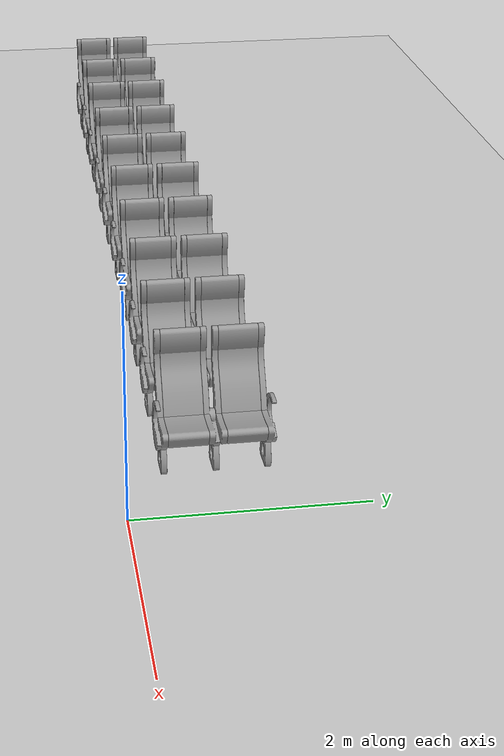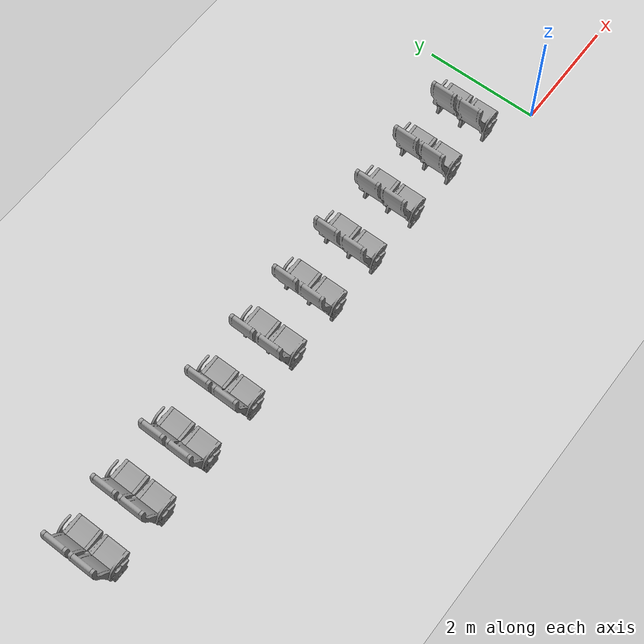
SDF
<sdf version="1.7">
 <world name="default">
  <model name="ground_plane">
   <static>1</static>
   <link name="link">
    <collision name="collision">
     <geometry><plane><normal>0 0 1</normal><size>100 100</size></plane></geometry>
     <surface><friction><ode><mu>100</mu><mu2>50</mu2></ode></friction></surface>
    </collision>
    <visual name="visual">
     <cast_shadows>0</cast_shadows>
     <geometry><plane><normal>0 0 1</normal><size>100 100</size></plane></geometry>
     <material>
      <script><uri>file://media/materials/scripts/gazebo.material</uri><name>Gazebo/Grey</name></script>
     </material>
    </visual>
   </link>
  </model>
  <model name="seat_10">
   <model name="seat">
    <link name="link_0">
     <inertial>
      <mass>1</mass>
      <inertia>
       <ixx>0.166667</ixx>
       <ixy>0</ixy>
       <ixz>0</ixz>
       <iyy>0.166667</iyy>
       <iyz>0</iyz>
       <izz>0.166667</izz>
      </inertia>
     </inertial>
     <visual name="visual">
      <pose>-0.3 -0.5 0 0 -0 0</pose>
      <geometry><mesh><uri>model://seat1/meshes/seat1.stl</uri><scale>0.001 0.001 0.001</scale></mesh></geometry>
      <material>
       <lighting>1</lighting>
       <script><uri>file://media/materials/scripts/gazebo.material</uri><name>Gazebo/Grey</name></script>
       <shader type="pixel"><normal_map>__default__</normal_map></shader>
       <ambient>0.3 0.3 0.3 1</ambient>
       <diffuse>0.7 0.7 0.7 1</diffuse>
       <specular>0.01 0.01 0.01 1</specular>
       <emissive>0 0 0 1</emissive>
      </material>
     </visual>
     <collision name="collision">
      <pose>-0.3 -0.5 0 0 -0 0</pose>
      <geometry><mesh><uri>model://seat1/meshes/seat1.stl</uri><scale>0.001 0.001 0.001</scale></mesh></geometry>
      <surface>
       <friction>
        <ode><mu>10000</mu><mu2>10000</mu2><fdir1>0 0 0</fdir1><slip1>0</slip1><slip2>0</slip2></ode>
        <torsional>
         <coefficient>1</coefficient>
         <patch_radius>0</patch_radius>
         <surface_radius>0</surface_radius>
         <use_patch_radius>1</use_patch_radius>
         <ode><slip>0</slip></ode>
        </torsional>
       </friction>
       <bounce><restitution_coefficient>0</restitution_coefficient><threshold>1e+06</threshold></bounce>
       <contact>
        <collide_without_contact>0</collide_without_contact>
        <collide_without_contact_bitmask>1</collide_without_contact_bitmask>
        <collide_bitmask>1</collide_bitmask>
        <ode>
         <soft_cfm>0</soft_cfm>
         <soft_erp>0.2</soft_erp>
         <kp>1e+13</kp>
         <kd>1</kd>
         <max_vel>0.01</max_vel>
         <min_depth>0</min_depth>
        </ode>
        <bullet>
         <split_impulse>1</split_impulse>
         <split_impulse_penetration_threshold>-0.01</split_impulse_penetration_threshold>
         <soft_cfm>0</soft_cfm>
         <soft_erp>0.2</soft_erp>
         <kp>1e+13</kp>
         <kd>1</kd>
        </bullet>
       </contact>
      </surface>
     </collision>
    </link>
    <static>0</static>
    <pose>-4.49906 0.001451 0 0 -0 0</pose>
   </model>
   <model name="seat_0">
    <link name="link_0">
     <inertial>
      <mass>1</mass>
      <inertia>
       <ixx>0.166667</ixx>
       <ixy>0</ixy>
       <ixz>0</ixz>
       <iyy>0.166667</iyy>
       <iyz>0</iyz>
       <izz>0.166667</izz>
      </inertia>
     </inertial>
     <visual name="visual">
      <pose>-0.3 -0.5 0 0 -0 0</pose>
      <geometry><mesh><uri>model://seat1/meshes/seat1.stl</uri><scale>0.001 0.001 0.001</scale></mesh></geometry>
      <material>
       <lighting>1</lighting>
       <script><uri>file://media/materials/scripts/gazebo.material</uri><name>Gazebo/Grey</name></script>
       <shader type="pixel"><normal_map>__default__</normal_map></shader>
       <ambient>0.3 0.3 0.3 1</ambient>
       <diffuse>0.7 0.7 0.7 1</diffuse>
       <specular>0.01 0.01 0.01 1</specular>
       <emissive>0 0 0 1</emissive>
      </material>
     </visual>
     <collision name="collision">
      <pose>-0.3 -0.5 0 0 -0 0</pose>
      <geometry><mesh><uri>model://seat1/meshes/seat1.stl</uri><scale>0.001 0.001 0.001</scale></mesh></geometry>
      <surface>
       <friction>
        <ode><mu>10000</mu><mu2>10000</mu2><fdir1>0 0 0</fdir1><slip1>0</slip1><slip2>0</slip2></ode>
        <torsional>
         <coefficient>1</coefficient>
         <patch_radius>0</patch_radius>
         <surface_radius>0</surface_radius>
         <use_patch_radius>1</use_patch_radius>
         <ode><slip>0</slip></ode>
        </torsional>
       </friction>
       <bounce><restitution_coefficient>0</restitution_coefficient><threshold>1e+06</threshold></bounce>
       <contact>
        <collide_without_contact>0</collide_without_contact>
        <collide_without_contact_bitmask>1</collide_without_contact_bitmask>
        <collide_bitmask>1</collide_bitmask>
        <ode>
         <soft_cfm>0</soft_cfm>
         <soft_erp>0.2</soft_erp>
         <kp>1e+13</kp>
         <kd>1</kd>
         <max_vel>0.01</max_vel>
         <min_depth>0</min_depth>
        </ode>
        <bullet>
         <split_impulse>1</split_impulse>
         <split_impulse_penetration_threshold>-0.01</split_impulse_penetration_threshold>
         <soft_cfm>0</soft_cfm>
         <soft_erp>0.2</soft_erp>
         <kp>1e+13</kp>
         <kd>1</kd>
        </bullet>
       </contact>
      </surface>
     </collision>
    </link>
    <static>0</static>
    <pose>-3.50213 0.000104 0 0 -0 0</pose>
   </model>
   <model name="seat_1">
    <link name="link_0">
     <inertial>
      <mass>1</mass>
      <inertia>
       <ixx>0.166667</ixx>
       <ixy>0</ixy>
       <ixz>0</ixz>
       <iyy>0.166667</iyy>
       <iyz>0</iyz>
       <izz>0.166667</izz>
      </inertia>
     </inertial>
     <visual name="visual">
      <pose>-0.3 -0.5 0 0 -0 0</pose>
      <geometry><mesh><uri>model://seat1/meshes/seat1.stl</uri><scale>0.001 0.001 0.001</scale></mesh></geometry>
      <material>
       <lighting>1</lighting>
       <script><uri>file://media/materials/scripts/gazebo.material</uri><name>Gazebo/Grey</name></script>
       <shader type="pixel"><normal_map>__default__</normal_map></shader>
       <ambient>0.3 0.3 0.3 1</ambient>
       <diffuse>0.7 0.7 0.7 1</diffuse>
       <specular>0.01 0.01 0.01 1</specular>
       <emissive>0 0 0 1</emissive>
      </material>
     </visual>
     <collision name="collision">
      <pose>-0.3 -0.5 0 0 -0 0</pose>
      <geometry><mesh><uri>model://seat1/meshes/seat1.stl</uri><scale>0.001 0.001 0.001</scale></mesh></geometry>
      <surface>
       <friction>
        <ode><mu>10000</mu><mu2>10000</mu2><fdir1>0 0 0</fdir1><slip1>0</slip1><slip2>0</slip2></ode>
        <torsional>
         <coefficient>1</coefficient>
         <patch_radius>0</patch_radius>
         <surface_radius>0</surface_radius>
         <use_patch_radius>1</use_patch_radius>
         <ode><slip>0</slip></ode>
        </torsional>
       </friction>
       <bounce><restitution_coefficient>0</restitution_coefficient><threshold>1e+06</threshold></bounce>
       <contact>
        <collide_without_contact>0</collide_without_contact>
        <collide_without_contact_bitmask>1</collide_without_contact_bitmask>
        <collide_bitmask>1</collide_bitmask>
        <ode>
         <soft_cfm>0</soft_cfm>
         <soft_erp>0.2</soft_erp>
         <kp>1e+13</kp>
         <kd>1</kd>
         <max_vel>0.01</max_vel>
         <min_depth>0</min_depth>
        </ode>
        <bullet>
         <split_impulse>1</split_impulse>
         <split_impulse_penetration_threshold>-0.01</split_impulse_penetration_threshold>
         <soft_cfm>0</soft_cfm>
         <soft_erp>0.2</soft_erp>
         <kp>1e+13</kp>
         <kd>1</kd>
        </bullet>
       </contact>
      </surface>
     </collision>
    </link>
    <static>0</static>
    <pose>-2.50166 -0.002281 0 0 -0 0</pose>
   </model>
   <model name="seat_2">
    <link name="link_0">
     <inertial>
      <mass>1</mass>
      <inertia>
       <ixx>0.166667</ixx>
       <ixy>0</ixy>
       <ixz>0</ixz>
       <iyy>0.166667</iyy>
       <iyz>0</iyz>
       <izz>0.166667</izz>
      </inertia>
     </inertial>
     <visual name="visual">
      <pose>-0.3 -0.5 0 0 -0 0</pose>
      <geometry><mesh><uri>model://seat1/meshes/seat1.stl</uri><scale>0.001 0.001 0.001</scale></mesh></geometry>
      <material>
       <lighting>1</lighting>
       <script><uri>file://media/materials/scripts/gazebo.material</uri><name>Gazebo/Grey</name></script>
       <shader type="pixel"><normal_map>__default__</normal_map></shader>
       <ambient>0.3 0.3 0.3 1</ambient>
       <diffuse>0.7 0.7 0.7 1</diffuse>
       <specular>0.01 0.01 0.01 1</specular>
       <emissive>0 0 0 1</emissive>
      </material>
     </visual>
     <collision name="collision">
      <pose>-0.3 -0.5 0 0 -0 0</pose>
      <geometry><mesh><uri>model://seat1/meshes/seat1.stl</uri><scale>0.001 0.001 0.001</scale></mesh></geometry>
      <surface>
       <friction>
        <ode><mu>10000</mu><mu2>10000</mu2><fdir1>0 0 0</fdir1><slip1>0</slip1><slip2>0</slip2></ode>
        <torsional>
         <coefficient>1</coefficient>
         <patch_radius>0</patch_radius>
         <surface_radius>0</surface_radius>
         <use_patch_radius>1</use_patch_radius>
         <ode><slip>0</slip></ode>
        </torsional>
       </friction>
       <bounce><restitution_coefficient>0</restitution_coefficient><threshold>1e+06</threshold></bounce>
       <contact>
        <collide_without_contact>0</collide_without_contact>
        <collide_without_contact_bitmask>1</collide_without_contact_bitmask>
        <collide_bitmask>1</collide_bitmask>
        <ode>
         <soft_cfm>0</soft_cfm>
         <soft_erp>0.2</soft_erp>
         <kp>1e+13</kp>
         <kd>1</kd>
         <max_vel>0.01</max_vel>
         <min_depth>0</min_depth>
        </ode>
        <bullet>
         <split_impulse>1</split_impulse>
         <split_impulse_penetration_threshold>-0.01</split_impulse_penetration_threshold>
         <soft_cfm>0</soft_cfm>
         <soft_erp>0.2</soft_erp>
         <kp>1e+13</kp>
         <kd>1</kd>
        </bullet>
       </contact>
      </surface>
     </collision>
    </link>
    <static>0</static>
    <pose>-1.49886 -0.001439 0 0 -0 0</pose>
   </model>
   <model name="seat_3">
    <link name="link_0">
     <inertial>
      <mass>1</mass>
      <inertia>
       <ixx>0.166667</ixx>
       <ixy>0</ixy>
       <ixz>0</ixz>
       <iyy>0.166667</iyy>
       <iyz>0</iyz>
       <izz>0.166667</izz>
      </inertia>
     </inertial>
     <visual name="visual">
      <pose>-0.3 -0.5 0 0 -0 0</pose>
      <geometry><mesh><uri>model://seat1/meshes/seat1.stl</uri><scale>0.001 0.001 0.001</scale></mesh></geometry>
      <material>
       <lighting>1</lighting>
       <script><uri>file://media/materials/scripts/gazebo.material</uri><name>Gazebo/Grey</name></script>
       <shader type="pixel"><normal_map>__default__</normal_map></shader>
       <ambient>0.3 0.3 0.3 1</ambient>
       <diffuse>0.7 0.7 0.7 1</diffuse>
       <specular>0.01 0.01 0.01 1</specular>
       <emissive>0 0 0 1</emissive>
      </material>
     </visual>
     <collision name="collision">
      <pose>-0.3 -0.5 0 0 -0 0</pose>
      <geometry><mesh><uri>model://seat1/meshes/seat1.stl</uri><scale>0.001 0.001 0.001</scale></mesh></geometry>
      <surface>
       <friction>
        <ode><mu>10000</mu><mu2>10000</mu2><fdir1>0 0 0</fdir1><slip1>0</slip1><slip2>0</slip2></ode>
        <torsional>
         <coefficient>1</coefficient>
         <patch_radius>0</patch_radius>
         <surface_radius>0</surface_radius>
         <use_patch_radius>1</use_patch_radius>
         <ode><slip>0</slip></ode>
        </torsional>
       </friction>
       <bounce><restitution_coefficient>0</restitution_coefficient><threshold>1e+06</threshold></bounce>
       <contact>
        <collide_without_contact>0</collide_without_contact>
        <collide_without_contact_bitmask>1</collide_without_contact_bitmask>
        <collide_bitmask>1</collide_bitmask>
        <ode>
         <soft_cfm>0</soft_cfm>
         <soft_erp>0.2</soft_erp>
         <kp>1e+13</kp>
         <kd>1</kd>
         <max_vel>0.01</max_vel>
         <min_depth>0</min_depth>
        </ode>
        <bullet>
         <split_impulse>1</split_impulse>
         <split_impulse_penetration_threshold>-0.01</split_impulse_penetration_threshold>
         <soft_cfm>0</soft_cfm>
         <soft_erp>0.2</soft_erp>
         <kp>1e+13</kp>
         <kd>1</kd>
        </bullet>
       </contact>
      </surface>
     </collision>
    </link>
    <static>0</static>
    <pose>-0.502503 -0.001106 0 0 -0 0</pose>
   </model>
   <model name="seat_4">
    <link name="link_0">
     <inertial>
      <mass>1</mass>
      <inertia>
       <ixx>0.166667</ixx>
       <ixy>0</ixy>
       <ixz>0</ixz>
       <iyy>0.166667</iyy>
       <iyz>0</iyz>
       <izz>0.166667</izz>
      </inertia>
     </inertial>
     <visual name="visual">
      <pose>-0.3 -0.5 0 0 -0 0</pose>
      <geometry><mesh><uri>model://seat1/meshes/seat1.stl</uri><scale>0.001 0.001 0.001</scale></mesh></geometry>
      <material>
       <lighting>1</lighting>
       <script><uri>file://media/materials/scripts/gazebo.material</uri><name>Gazebo/Grey</name></script>
       <shader type="pixel"><normal_map>__default__</normal_map></shader>
       <ambient>0.3 0.3 0.3 1</ambient>
       <diffuse>0.7 0.7 0.7 1</diffuse>
       <specular>0.01 0.01 0.01 1</specular>
       <emissive>0 0 0 1</emissive>
      </material>
     </visual>
     <collision name="collision">
      <pose>-0.3 -0.5 0 0 -0 0</pose>
      <geometry><mesh><uri>model://seat1/meshes/seat1.stl</uri><scale>0.001 0.001 0.001</scale></mesh></geometry>
      <surface>
       <friction>
        <ode><mu>10000</mu><mu2>10000</mu2><fdir1>0 0 0</fdir1><slip1>0</slip1><slip2>0</slip2></ode>
        <torsional>
         <coefficient>1</coefficient>
         <patch_radius>0</patch_radius>
         <surface_radius>0</surface_radius>
         <use_patch_radius>1</use_patch_radius>
         <ode><slip>0</slip></ode>
        </torsional>
       </friction>
       <bounce><restitution_coefficient>0</restitution_coefficient><threshold>1e+06</threshold></bounce>
       <contact>
        <collide_without_contact>0</collide_without_contact>
        <collide_without_contact_bitmask>1</collide_without_contact_bitmask>
        <collide_bitmask>1</collide_bitmask>
        <ode>
         <soft_cfm>0</soft_cfm>
         <soft_erp>0.2</soft_erp>
         <kp>1e+13</kp>
         <kd>1</kd>
         <max_vel>0.01</max_vel>
         <min_depth>0</min_depth>
        </ode>
        <bullet>
         <split_impulse>1</split_impulse>
         <split_impulse_penetration_threshold>-0.01</split_impulse_penetration_threshold>
         <soft_cfm>0</soft_cfm>
         <soft_erp>0.2</soft_erp>
         <kp>1e+13</kp>
         <kd>1</kd>
        </bullet>
       </contact>
      </surface>
     </collision>
    </link>
    <static>0</static>
    <pose>0.499248 0.004347 0 0 -0 0</pose>
   </model>
   <model name="seat_5">
    <link name="link_0">
     <inertial>
      <mass>1</mass>
      <inertia>
       <ixx>0.166667</ixx>
       <ixy>0</ixy>
       <ixz>0</ixz>
       <iyy>0.166667</iyy>
       <iyz>0</iyz>
       <izz>0.166667</izz>
      </inertia>
     </inertial>
     <visual name="visual">
      <pose>-0.3 -0.5 0 0 -0 0</pose>
      <geometry><mesh><uri>model://seat1/meshes/seat1.stl</uri><scale>0.001 0.001 0.001</scale></mesh></geometry>
      <material>
       <lighting>1</lighting>
       <script><uri>file://media/materials/scripts/gazebo.material</uri><name>Gazebo/Grey</name></script>
       <shader type="pixel"><normal_map>__default__</normal_map></shader>
       <ambient>0.3 0.3 0.3 1</ambient>
       <diffuse>0.7 0.7 0.7 1</diffuse>
       <specular>0.01 0.01 0.01 1</specular>
       <emissive>0 0 0 1</emissive>
      </material>
     </visual>
     <collision name="collision">
      <pose>-0.3 -0.5 0 0 -0 0</pose>
      <geometry><mesh><uri>model://seat1/meshes/seat1.stl</uri><scale>0.001 0.001 0.001</scale></mesh></geometry>
      <surface>
       <friction>
        <ode><mu>10000</mu><mu2>10000</mu2><fdir1>0 0 0</fdir1><slip1>0</slip1><slip2>0</slip2></ode>
        <torsional>
         <coefficient>1</coefficient>
         <patch_radius>0</patch_radius>
         <surface_radius>0</surface_radius>
         <use_patch_radius>1</use_patch_radius>
         <ode><slip>0</slip></ode>
        </torsional>
       </friction>
       <bounce><restitution_coefficient>0</restitution_coefficient><threshold>1e+06</threshold></bounce>
       <contact>
        <collide_without_contact>0</collide_without_contact>
        <collide_without_contact_bitmask>1</collide_without_contact_bitmask>
        <collide_bitmask>1</collide_bitmask>
        <ode>
         <soft_cfm>0</soft_cfm>
         <soft_erp>0.2</soft_erp>
         <kp>1e+13</kp>
         <kd>1</kd>
         <max_vel>0.01</max_vel>
         <min_depth>0</min_depth>
        </ode>
        <bullet>
         <split_impulse>1</split_impulse>
         <split_impulse_penetration_threshold>-0.01</split_impulse_penetration_threshold>
         <soft_cfm>0</soft_cfm>
         <soft_erp>0.2</soft_erp>
         <kp>1e+13</kp>
         <kd>1</kd>
        </bullet>
       </contact>
      </surface>
     </collision>
    </link>
    <static>0</static>
    <pose>1.49969 0.0043 0 0 -0 0</pose>
   </model>
   <model name="seat_6">
    <link name="link_0">
     <inertial>
      <mass>1</mass>
      <inertia>
       <ixx>0.166667</ixx>
       <ixy>0</ixy>
       <ixz>0</ixz>
       <iyy>0.166667</iyy>
       <iyz>0</iyz>
       <izz>0.166667</izz>
      </inertia>
     </inertial>
     <visual name="visual">
      <pose>-0.3 -0.5 0 0 -0 0</pose>
      <geometry><mesh><uri>model://seat1/meshes/seat1.stl</uri><scale>0.001 0.001 0.001</scale></mesh></geometry>
      <material>
       <lighting>1</lighting>
       <script><uri>file://media/materials/scripts/gazebo.material</uri><name>Gazebo/Grey</name></script>
       <shader type="pixel"><normal_map>__default__</normal_map></shader>
       <ambient>0.3 0.3 0.3 1</ambient>
       <diffuse>0.7 0.7 0.7 1</diffuse>
       <specular>0.01 0.01 0.01 1</specular>
       <emissive>0 0 0 1</emissive>
      </material>
     </visual>
     <collision name="collision">
      <pose>-0.3 -0.5 0 0 -0 0</pose>
      <geometry><mesh><uri>model://seat1/meshes/seat1.stl</uri><scale>0.001 0.001 0.001</scale></mesh></geometry>
      <surface>
       <friction>
        <ode><mu>10000</mu><mu2>10000</mu2><fdir1>0 0 0</fdir1><slip1>0</slip1><slip2>0</slip2></ode>
        <torsional>
         <coefficient>1</coefficient>
         <patch_radius>0</patch_radius>
         <surface_radius>0</surface_radius>
         <use_patch_radius>1</use_patch_radius>
         <ode><slip>0</slip></ode>
        </torsional>
       </friction>
       <bounce><restitution_coefficient>0</restitution_coefficient><threshold>1e+06</threshold></bounce>
       <contact>
        <collide_without_contact>0</collide_without_contact>
        <collide_without_contact_bitmask>1</collide_without_contact_bitmask>
        <collide_bitmask>1</collide_bitmask>
        <ode>
         <soft_cfm>0</soft_cfm>
         <soft_erp>0.2</soft_erp>
         <kp>1e+13</kp>
         <kd>1</kd>
         <max_vel>0.01</max_vel>
         <min_depth>0</min_depth>
        </ode>
        <bullet>
         <split_impulse>1</split_impulse>
         <split_impulse_penetration_threshold>-0.01</split_impulse_penetration_threshold>
         <soft_cfm>0</soft_cfm>
         <soft_erp>0.2</soft_erp>
         <kp>1e+13</kp>
         <kd>1</kd>
        </bullet>
       </contact>
      </surface>
     </collision>
    </link>
    <static>0</static>
    <pose>2.50992 -0.000349 0 0 -0 0</pose>
   </model>
   <model name="seat_7">
    <link name="link_0">
     <inertial>
      <mass>1</mass>
      <inertia>
       <ixx>0.166667</ixx>
       <ixy>0</ixy>
       <ixz>0</ixz>
       <iyy>0.166667</iyy>
       <iyz>0</iyz>
       <izz>0.166667</izz>
      </inertia>
     </inertial>
     <visual name="visual">
      <pose>-0.3 -0.5 0 0 -0 0</pose>
      <geometry><mesh><uri>model://seat1/meshes/seat1.stl</uri><scale>0.001 0.001 0.001</scale></mesh></geometry>
      <material>
       <lighting>1</lighting>
       <script><uri>file://media/materials/scripts/gazebo.material</uri><name>Gazebo/Grey</name></script>
       <shader type="pixel"><normal_map>__default__</normal_map></shader>
       <ambient>0.3 0.3 0.3 1</ambient>
       <diffuse>0.7 0.7 0.7 1</diffuse>
       <specular>0.01 0.01 0.01 1</specular>
       <emissive>0 0 0 1</emissive>
      </material>
     </visual>
     <collision name="collision">
      <pose>-0.3 -0.5 0 0 -0 0</pose>
      <geometry><mesh><uri>model://seat1/meshes/seat1.stl</uri><scale>0.001 0.001 0.001</scale></mesh></geometry>
      <surface>
       <friction>
        <ode><mu>10000</mu><mu2>10000</mu2><fdir1>0 0 0</fdir1><slip1>0</slip1><slip2>0</slip2></ode>
        <torsional>
         <coefficient>1</coefficient>
         <patch_radius>0</patch_radius>
         <surface_radius>0</surface_radius>
         <use_patch_radius>1</use_patch_radius>
         <ode><slip>0</slip></ode>
        </torsional>
       </friction>
       <bounce><restitution_coefficient>0</restitution_coefficient><threshold>1e+06</threshold></bounce>
       <contact>
        <collide_without_contact>0</collide_without_contact>
        <collide_without_contact_bitmask>1</collide_without_contact_bitmask>
        <collide_bitmask>1</collide_bitmask>
        <ode>
         <soft_cfm>0</soft_cfm>
         <soft_erp>0.2</soft_erp>
         <kp>1e+13</kp>
         <kd>1</kd>
         <max_vel>0.01</max_vel>
         <min_depth>0</min_depth>
        </ode>
        <bullet>
         <split_impulse>1</split_impulse>
         <split_impulse_penetration_threshold>-0.01</split_impulse_penetration_threshold>
         <soft_cfm>0</soft_cfm>
         <soft_erp>0.2</soft_erp>
         <kp>1e+13</kp>
         <kd>1</kd>
        </bullet>
       </contact>
      </surface>
     </collision>
    </link>
    <static>0</static>
    <pose>3.49546 -0.002775 0 0 -0 0</pose>
   </model>
   <model name="seat_8">
    <link name="link_0">
     <inertial>
      <mass>1</mass>
      <inertia>
       <ixx>0.166667</ixx>
       <ixy>0</ixy>
       <ixz>0</ixz>
       <iyy>0.166667</iyy>
       <iyz>0</iyz>
       <izz>0.166667</izz>
      </inertia>
     </inertial>
     <visual name="visual">
      <pose>-0.3 -0.5 0 0 -0 0</pose>
      <geometry><mesh><uri>model://seat1/meshes/seat1.stl</uri><scale>0.001 0.001 0.001</scale></mesh></geometry>
      <material>
       <lighting>1</lighting>
       <script><uri>file://media/materials/scripts/gazebo.material</uri><name>Gazebo/Grey</name></script>
       <shader type="pixel"><normal_map>__default__</normal_map></shader>
       <ambient>0.3 0.3 0.3 1</ambient>
       <diffuse>0.7 0.7 0.7 1</diffuse>
       <specular>0.01 0.01 0.01 1</specular>
       <emissive>0 0 0 1</emissive>
      </material>
     </visual>
     <collision name="collision">
      <pose>-0.3 -0.5 0 0 -0 0</pose>
      <geometry><mesh><uri>model://seat1/meshes/seat1.stl</uri><scale>0.001 0.001 0.001</scale></mesh></geometry>
      <surface>
       <friction>
        <ode><mu>10000</mu><mu2>10000</mu2><fdir1>0 0 0</fdir1><slip1>0</slip1><slip2>0</slip2></ode>
        <torsional>
         <coefficient>1</coefficient>
         <patch_radius>0</patch_radius>
         <surface_radius>0</surface_radius>
         <use_patch_radius>1</use_patch_radius>
         <ode><slip>0</slip></ode>
        </torsional>
       </friction>
       <bounce><restitution_coefficient>0</restitution_coefficient><threshold>1e+06</threshold></bounce>
       <contact>
        <collide_without_contact>0</collide_without_contact>
        <collide_without_contact_bitmask>1</collide_without_contact_bitmask>
        <collide_bitmask>1</collide_bitmask>
        <ode>
         <soft_cfm>0</soft_cfm>
         <soft_erp>0.2</soft_erp>
         <kp>1e+13</kp>
         <kd>1</kd>
         <max_vel>0.01</max_vel>
         <min_depth>0</min_depth>
        </ode>
        <bullet>
         <split_impulse>1</split_impulse>
         <split_impulse_penetration_threshold>-0.01</split_impulse_penetration_threshold>
         <soft_cfm>0</soft_cfm>
         <soft_erp>0.2</soft_erp>
         <kp>1e+13</kp>
         <kd>1</kd>
        </bullet>
       </contact>
      </surface>
     </collision>
    </link>
    <static>0</static>
    <pose>4.4999 -0.002251 0 0 -0 0</pose>
   </model>
   <static>0</static>
   <pose>-5.35343 0.810116 0.000135 1e-06 -1.2e-05 0.000505</pose>
  </model>
 </world>
</sdf>
